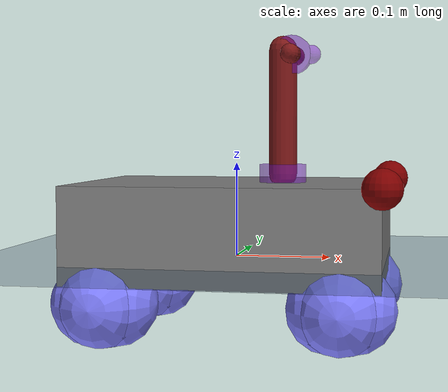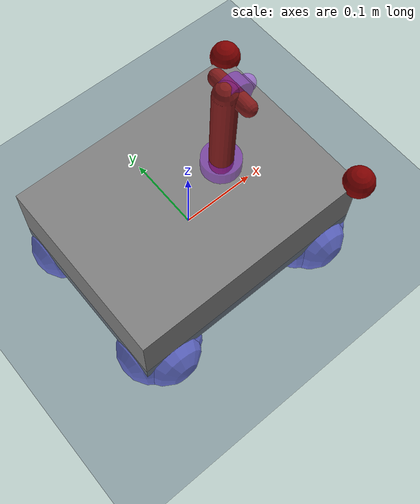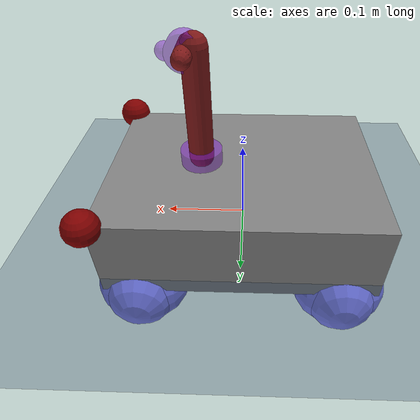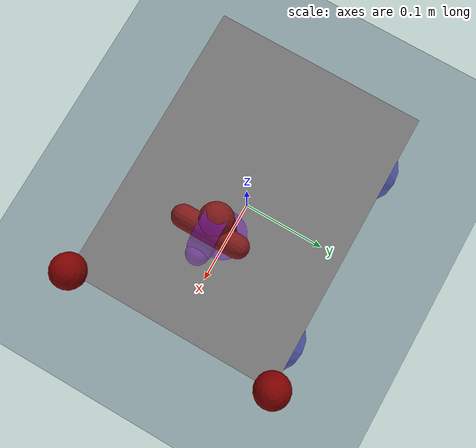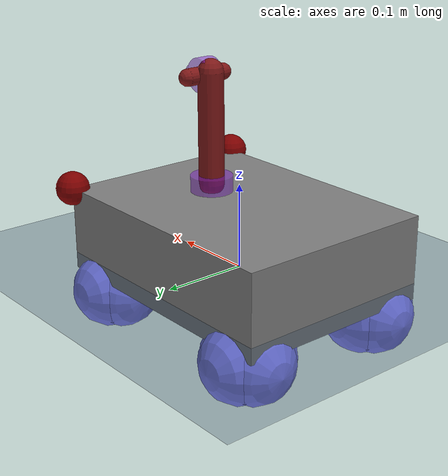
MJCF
<mujoco>
  <compiler autolimits="true"/>
  <option timestep="0.002"/>
  <asset>
    <texture name="grid" type="2d" builtin="checker" width="512" height="512" rgb1=".1 .2 .3" rgb2=".2 .3 .4"/>
    <material name="grid" texture="grid" texrepeat="1 1" texuniform="true" reflectance=".2"/>
    <mesh name="chasis" scale="1 1 1"
      vertex="  .16 .12 -.05
                .16 .12 .05
                -.16 .12 -.05
                -.16 .12 .05
                .16 -.12 -.05
                .16 -.12 .05
                -.16 -.12 .05
                -.16 -.12 -.05"/>

    <texture type="skybox" builtin="gradient" rgb1="0.6 0.6 0.6" rgb2="0 0 0" width="512" height="512"/>
  </asset>

  <visual>
    <global offwidth="1536" offheight="864"/>
    <rgba haze=".3 .3 .3 1"/>
  </visual>

  <default>
    <joint damping=".03" actuatorfrcrange="-0.5 0.5"/>
    <default class="wheel">
      <geom type="capsule" size=".045 .01" rgba=".5 .5 1 1"/>
    </default>
    <default class="contact site">
      <site type="sphere" rgba="0.5 0 0 1" size="0.02 0.02 0.02"/>
    </default>
  </default>

  <worldbody>
    <light directional="true" diffuse=".8 .8 .8" specular=".2 .2 .2" pos="0 0 5" dir="0 0 -1"/>
    <geom name="floor" type="plane" size="0 0 .01" material="grid"/>
    <body name="car" pos="0 0 .03">
      <freejoint/>
      <geom name="chasis" type="mesh" mesh="chasis"/>

      <site name="contact site front left" class="contact site" pos=".16 .12 .05"/>
      <site name="contact site front right" class="contact site" pos=".16 -.12 .05"/>

      <body pos=".05 0 .059" quat="0 0 0 1">
        <geom name="upper arm" type="capsule" size="0.015" fromto="0 0 0  0 0 .131" rgba=".5 .1 .1 1"/>
        <joint name="shoulder"/>
        <geom name="shoulder" type="cylinder" pos="0 0 0" size=".025 .01" rgba=".5 .1 .8 .5" mass="0" group="1"/>

        <body pos="-0.01 0 .126" quat = "0 0 .707 .707">
          <geom name="forearm" type="capsule" size="0.01" fromto="0 0 -.025    0 0 .025" rgba=".5 .1 .1 1" mass="5"/>
          <joint name="elbow"/>
          <geom name="elbow" type="cylinder" pos="0 0 0" size=".02 .01" rgba=".5 .1 .8 .5" mass="0" group="1"/>

          <body pos="0.02 0 0" quat="0.707 0 -0.707 0" name="fixater">
            <geom type="sphere" size="0.01" pos="0 0 0" rgba=".5 .1 .8 .5" mass="0"/>
            <camera name="fixater" mode="fixed" fovy="45"/>
          </body>
        </body>
      </body>

      <body name="back left wheel" pos=".12 .09 -.07" zaxis="0 1 0">
        <joint name="bleft"/>
        <geom name="blw" class="wheel"/>
      </body>

      <body name="back right wheel" pos=".12 -.09 -.07" zaxis="0 1 0">
        <joint name="bright"/>
        <geom name="brw" class="wheel"/>
      </body>

      <body name="front left wheel" pos="-.12 .09 -.07" zaxis="0 1 0">
        <joint name="fleft"/>
        <geom name="flw" class="wheel"/>
      </body>
      <body name="front right wheel" pos="-.12 -.09 -.07" zaxis="0 1 0">
        <joint name="fright"/>
        <geom name="frw" class="wheel"/>
      </body>

      <body name="back left wheel-alt" pos=".12 .09 -.07" zaxis="1 0 0">
        <joint name="bleft-alt"/>
        <geom name="blw-a" class="wheel"/>
      </body>

      <body name="back right wheel-alt" pos=".12 -.09 -.07" zaxis="1 0 0">
        <joint name="bright-alt"/>
        <geom name="brw-a" class="wheel"/>
      </body>

      <body name="front right wheel-alt" pos="-.12 -.09 -.07" zaxis="1 0 0">
        <joint name="fright-alt"/>
        <geom name="frw-a" class="wheel"/>
      </body>

      <body name="front left wheel-alt" pos="-.12 .09 -.07" zaxis="1 0 0">
        <joint name="fleft-alt"/>
        <geom name="flw-a" class="wheel"/>
      </body>
    </body>
  </worldbody>

  <tendon>
    <fixed name="forward">
      <joint joint="bleft" coef=".5"/>
      <joint joint="fleft" coef=".5"/>
      <joint joint="bright" coef=".5"/>
      <joint joint="fright" coef=".5"/>
    </fixed>
    <fixed name="turn">
      <joint joint="bleft-alt" coef="-.5"/>
      <joint joint="bright-alt" coef="-.5"/>
      <joint joint="fleft-alt" coef=".5"/>
      <joint joint="fright-alt" coef=".5"/>
    </fixed>
    <fixed name="horizontal">
      <joint joint="bleft-alt" coef=".5"/>
      <joint joint="bright-alt" coef=".5"/>
      <joint joint="fleft-alt" coef=".5"/>
      <joint joint="fright-alt" coef=".5"/>
    </fixed>
  </tendon>

  <actuator>
    <motor name="forward" tendon="forward" ctrlrange="-2 2"/>
    <motor name="turn" tendon="turn" ctrlrange="-2 2"/>
    <motor name="horizontal" tendon="horizontal" ctrlrange="-2 2"/>
    <velocity name="shoulderv" joint="shoulder" kv=".1" />
    <velocity name="elbowv" joint="elbow" kv=".1" />
  </actuator>

  <contact>
    <pair name="blc" geom2="floor" geom1="blw" condim="3" friction="0.01 1"/>
    <pair name="brc" geom2="floor" geom1="brw" condim="3" friction="0.01 1"/>
    <pair name="frc" geom2="floor" geom1="frw" condim="3" friction="0.01 1"/>
    <pair name="flc" geom2="floor" geom1="flw" condim="3" friction="0.01 1"/>

    <pair name="blca" geom2="floor" geom1="blw-a" condim="3" friction="0.01 1"/>
    <pair name="brca" geom2="floor" geom1="brw-a" condim="3" friction="0.01 1"/>
    <pair name="frca" geom2="floor" geom1="frw-a" condim="3" friction="0.01 1"/>
    <pair name="flca" geom2="floor" geom1="flw-a" condim="3" friction="0.01 1"/>

    <exclude name="blp" body1="back left wheel" body2="back left wheel-alt"/>
    <exclude name="brp" body1="back right wheel" body2="back right wheel-alt"/>
    <exclude name="flp" body1="front left wheel" body2="front left wheel-alt"/>
    <exclude name="frp" body1="front right wheel" body2="front right wheel-alt"/>
  </contact>

  <sensor>
    <touch name="front left" site="contact site front left"/>
    <touch name="front right" site="contact site front right"/>
  </sensor>
</mujoco>
